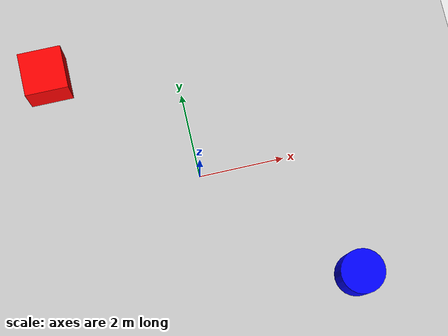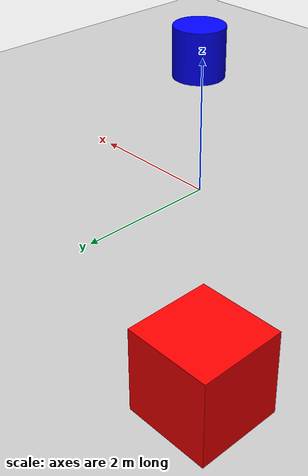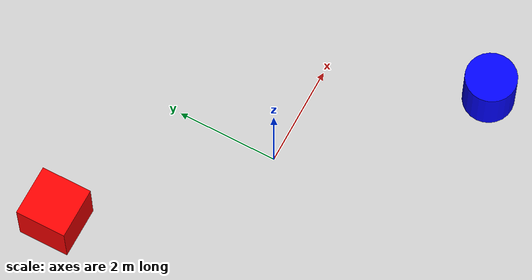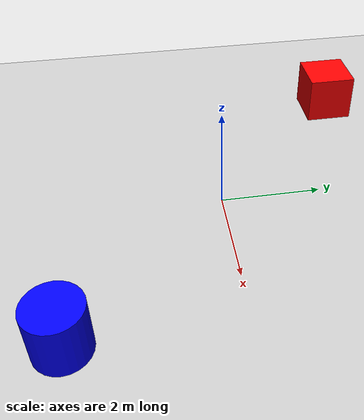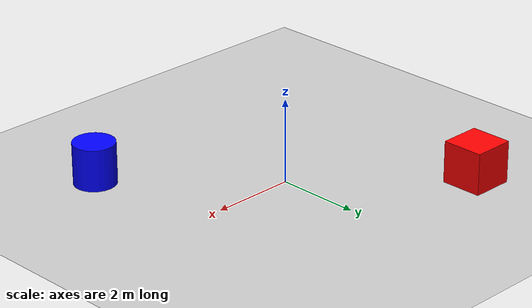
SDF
<?xml version="1.0" ?>
<sdf version="1.6">
  <world name="test_dynamic_world">
    <include>
      <uri>model://sun</uri>
    </include>
    <include>
      <uri>model://ground_plane</uri>
    </include>

    <model name="animated_box">
      <pose>-3 3 0.5 0 0 0</pose>
      <link name="link">
        <inertial>
          <mass>1.0</mass>
          <inertia>
            <ixx>0.083</ixx>
            <ixy>0.0</ixy>
            <ixz>0.0</ixz>
            <iyy>0.083</iyy>
            <iyz>0.0</iyz>
            <izz>0.083</izz>
          </inertia>
        </inertial>
        <collision name="collision">
          <geometry>
            <box>
              <size>1 1 1</size>
            </box>
          </geometry>
        </collision>
        <visual name="visual">
          <geometry>
            <box>
              <size>1 1 1</size>
            </box>
          </geometry>
          <material>
            <ambient>1 0 0 1</ambient>
            <diffuse>1 0 0 1</diffuse>
            <specular>0.1 0.1 0.1 1</specular>
          </material>
        </visual>
      </link>
      <plugin name="box_mover" filename="libgazebo_ros_planar_move.so">
        <ros>
          <namespace>/box</namespace>
          <remapping>cmd_vel:=/box_cmd_vel</remapping>
          <remapping>odom:=/box_odom</remapping>
        </ros>
        <update_rate>20</update_rate>
        <publish_odom>true</publish_odom>
        <publish_odom_tf>true</publish_odom_tf>
        <odometry_frame>odom</odometry_frame>
        <robot_base_frame>link</robot_base_frame>
      </plugin>
    </model>

    <model name="animated_cylinder">
        <pose>3 -3 0.5 0 0 0</pose>
        <link name="link">
            <inertial>
                <mass>1.0</mass>
                <inertia>
                    <ixx>0.083</ixx>
                    <ixy>0.0</ixy>
                    <ixz>0.0</ixz>
                    <iyy>0.083</iyy>
                    <iyz>0.0</iyz>
                    <izz>0.083</izz>
                </inertia>
            </inertial>
            <collision name="collision">
                <geometry>
                    <cylinder>
                        <radius>0.5</radius>
                        <length>1.0</length>
                    </cylinder>
                </geometry>
            </collision>
            <visual name="visual">
                <geometry>
                    <cylinder>
                        <radius>0.5</radius>
                        <length>1.0</length>
                    </cylinder>
                </geometry>
                <material>
                    <ambient>0 0 1 1</ambient>
                    <diffuse>0 0 1 1</diffuse>
                    <specular>0.1 0.1 0.1 1</specular>
                </material>
            </visual>
        </link>
        <plugin name="cylinder_mover" filename="libgazebo_ros_planar_move.so">
            <ros>
              <namespace>/cylinder</namespace>
              <remapping>cmd_vel:=/cylinder_cmd_vel</remapping>
              <remapping>odom:=/cylinder_odom</remapping>
            </ros>
            <update_rate>20</update_rate>
            <publish_odom>true</publish_odom>
            <publish_odom_tf>true</publish_odom_tf>
            <odometry_frame>odom</odometry_frame>
            <robot_base_frame>link</robot_base_frame>
        </plugin>
    </model>

  </world>
</sdf>
